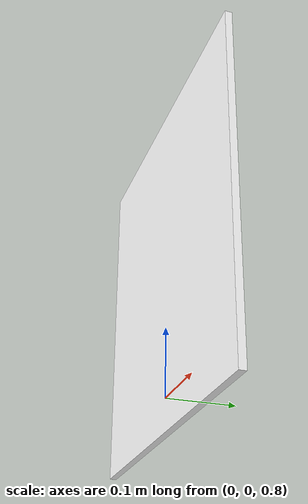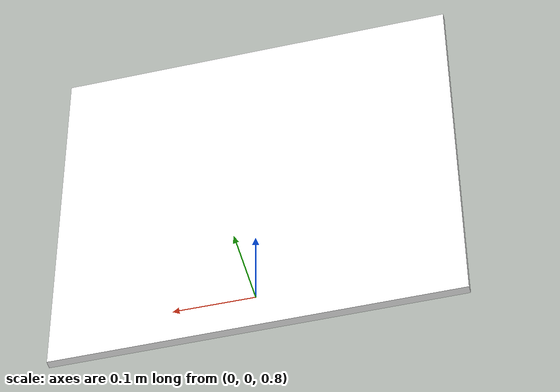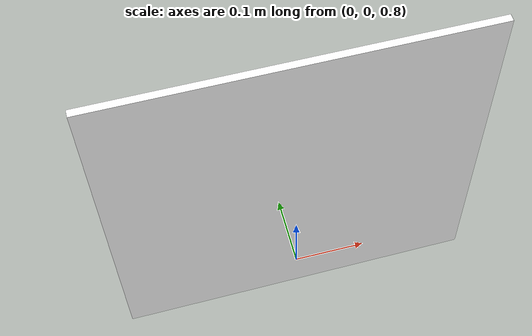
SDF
<?xml version="1.0"?>
<sdf version="1.10">
  <model name="billboard_qr">
    <static>true</static>

    <link name="billboard_link">
      <pose>0 0 1.0 1.5708 0 0</pose>

      <visual name="qr_surface">
        <geometry>
          <box>
            <size>0.5 0.5 0.01</size>
          </box>
        </geometry>
        <material>
          <diffuse>1 1 1 1</diffuse>
          <pbr>
            <metal>
              <albedo_map>materials/textures/qr_code.png</albedo_map>
            </metal>
          </pbr>
        </material>
      </visual>

      <collision name="billboard_collision">
        <geometry>
          <box>
            <size>0.5 0.5 0.01</size>
          </box>
        </geometry>
      </collision>
    </link>
  </model>
</sdf>
